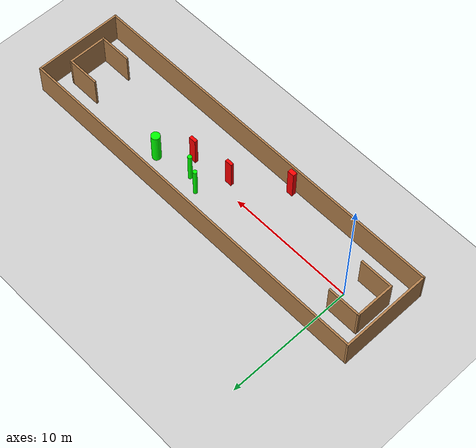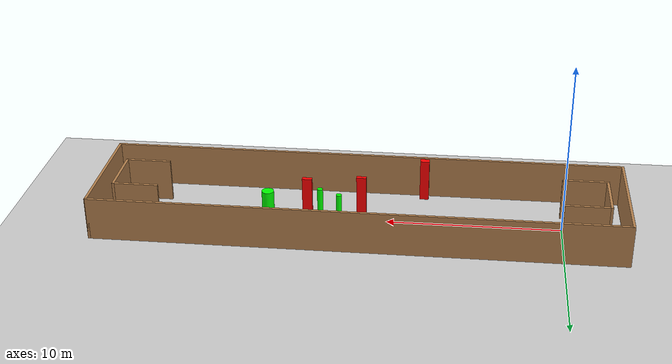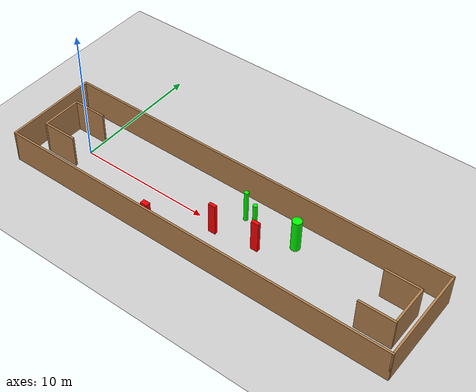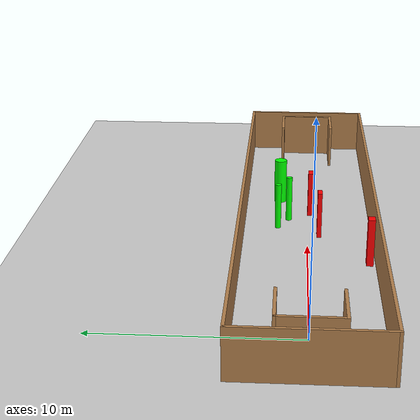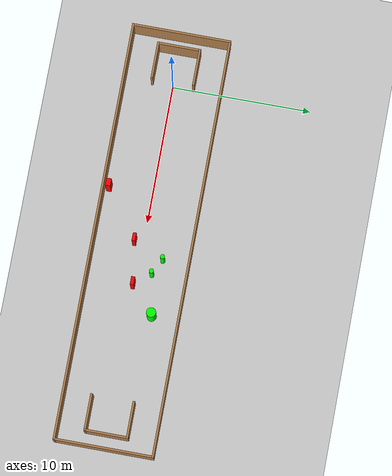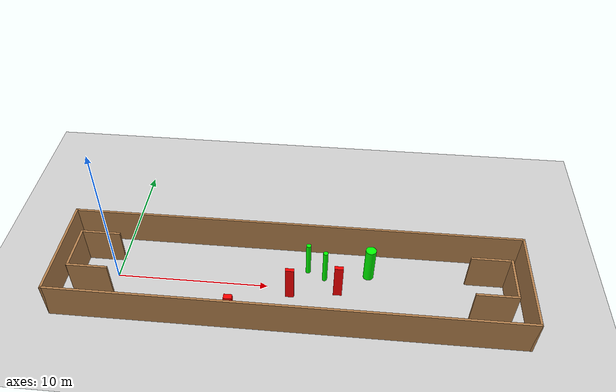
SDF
<sdf version="1.7">
 <world name="default">
  <light name="sun" type="directional">
   <pose>0 0 10 0 -0 0</pose>
   <diffuse>0.8 0.8 0.8 1</diffuse>
   <specular>0.2 0.2 0.2 1</specular>
   <attenuation>
    <range>1000</range>
    <constant>0.9</constant>
    <linear>0.01</linear>
    <quadratic>0.001</quadratic>
   </attenuation>
   <direction>-0.5 0.1 -0.9</direction>
   <spot><inner_angle>0</inner_angle><outer_angle>0</outer_angle><falloff>0</falloff></spot>
  </light>
  <model name="ground_plane">
   <static>1</static>
   <link name="link">
    <collision name="collision">
     <geometry><plane><normal>0 0 1</normal><size>100 100</size></plane></geometry>
     <surface>
      <contact><collide_bitmask>65535</collide_bitmask></contact>
      <friction><ode><mu>100</mu><mu2>50</mu2></ode></friction>
     </surface>
    </collision>
    <visual name="visual">
     <cast_shadows>0</cast_shadows>
     <geometry><plane><normal>0 0 1</normal><size>100 100</size></plane></geometry>
     <material>
      <script><uri>file://media/materials/scripts/gazebo.material</uri><name>Gazebo/Grey</name></script>
     </material>
    </visual>
   </link>
  </model>
  <gravity>0 0 -9.8</gravity>
  <magnetic_field>6e-06 2.3e-05 -4.2e-05</magnetic_field>
  <atmosphere type="adiabatic"/>
  <physics type="ode">
   <max_step_size>0.001</max_step_size>
   <real_time_factor>1</real_time_factor>
   <real_time_update_rate>1000</real_time_update_rate>
  </physics>
  <scene><ambient>0.4 0.4 0.4 1</ambient><background>0.7 0.7 0.7 1</background><shadows>1</shadows></scene>
  <spherical_coordinates>
   <surface_model>EARTH_WGS84</surface_model>
   <latitude_deg>0</latitude_deg>
   <longitude_deg>0</longitude_deg>
   <elevation>0</elevation>
   <heading_deg>0</heading_deg>
  </spherical_coordinates>
  <model name="my_base_walls">
   <link name="Wall_0">
    <collision name="Wall_0_Collision">
     <geometry><box><size>7.15 0.15 2.5</size></box></geometry>
     <pose>0 0 1.25 0 -0 0</pose>
    </collision>
    <visual name="Wall_0_Visual">
     <pose>0 0 1.25 0 -0 0</pose>
     <geometry><box><size>7.15 0.15 2.5</size></box></geometry>
     <material>
      <script><uri>file://media/materials/scripts/gazebo.material</uri><name>Gazebo/Wood</name></script>
      <ambient>1 1 1 1</ambient>
     </material>
     <meta><layer>0</layer></meta>
    </visual>
    <pose>-15 0 0 0 -0 1.5708</pose>
   </link>
   <link name="Wall_10">
    <collision name="Wall_10_Collision">
     <geometry><box><size>2.65 0.15 2.5</size></box></geometry>
     <pose>0 0 1.25 0 -0 0</pose>
    </collision>
    <visual name="Wall_10_Visual">
     <pose>0 0 1.25 0 -0 0</pose>
     <geometry><box><size>2.65 0.15 2.5</size></box></geometry>
     <material>
      <script><uri>file://media/materials/scripts/gazebo.material</uri><name>Gazebo/Wood</name></script>
      <ambient>1 1 1 1</ambient>
     </material>
     <meta><layer>0</layer></meta>
    </visual>
    <pose>-12.75 -1.5 0 0 -0 0</pose>
   </link>
   <link name="Wall_12">
    <collision name="Wall_12_Collision">
     <geometry><box><size>2.65 0.15 2.5</size></box></geometry>
     <pose>0 0 1.25 0 -0 0</pose>
    </collision>
    <visual name="Wall_12_Visual">
     <pose>0 0 1.25 0 -0 0</pose>
     <geometry><box><size>2.65 0.15 2.5</size></box></geometry>
     <material>
      <script><uri>file://media/materials/scripts/gazebo.material</uri><name>Gazebo/Wood</name></script>
      <ambient>1 1 1 1</ambient>
     </material>
     <meta><layer>0</layer></meta>
    </visual>
    <pose>-12.75 1.5 0 0 -0 0</pose>
   </link>
   <link name="Wall_14">
    <collision name="Wall_14_Collision">
     <geometry><box><size>3.15 0.15 2.5</size></box></geometry>
     <pose>0 0 1.25 0 -0 0</pose>
    </collision>
    <visual name="Wall_14_Visual">
     <pose>0 0 1.25 0 -0 0</pose>
     <geometry><box><size>3.15 0.15 2.5</size></box></geometry>
     <material>
      <script><uri>file://media/materials/scripts/gazebo.material</uri><name>Gazebo/Wood</name></script>
      <ambient>1 1 1 1</ambient>
     </material>
     <meta><layer>0</layer></meta>
    </visual>
    <pose>14 0 0 0 -0 -1.5708</pose>
   </link>
   <link name="Wall_15">
    <collision name="Wall_15_Collision">
     <geometry><box><size>2.65 0.15 2.5</size></box></geometry>
     <pose>0 0 1.25 0 -0 0</pose>
    </collision>
    <visual name="Wall_15_Visual">
     <pose>0 0 1.25 0 -0 0</pose>
     <geometry><box><size>2.65 0.15 2.5</size></box></geometry>
     <material>
      <script><uri>file://media/materials/scripts/gazebo.material</uri><name>Gazebo/Wood</name></script>
      <ambient>1 1 1 1</ambient>
     </material>
     <meta><layer>0</layer></meta>
    </visual>
    <pose>12.75 -1.5 0 0 -0 3.14159</pose>
   </link>
   <link name="Wall_17">
    <collision name="Wall_17_Collision">
     <geometry><box><size>2.65 0.15 2.5</size></box></geometry>
     <pose>0 0 1.25 0 -0 0</pose>
    </collision>
    <visual name="Wall_17_Visual">
     <pose>0 0 1.25 0 -0 0</pose>
     <geometry><box><size>2.65 0.15 2.5</size></box></geometry>
     <material>
      <script><uri>file://media/materials/scripts/gazebo.material</uri><name>Gazebo/Wood</name></script>
      <ambient>1 1 1 1</ambient>
     </material>
     <meta><layer>0</layer></meta>
    </visual>
    <pose>12.75 1.5 0 0 -0 3.14159</pose>
   </link>
   <link name="Wall_2">
    <collision name="Wall_2_Collision">
     <geometry><box><size>30.15 0.15 2.5</size></box></geometry>
     <pose>0 0 1.25 0 -0 0</pose>
    </collision>
    <visual name="Wall_2_Visual">
     <pose>0 0 1.25 0 -0 0</pose>
     <geometry><box><size>30.15 0.15 2.5</size></box></geometry>
     <material>
      <script><uri>file://media/materials/scripts/gazebo.material</uri><name>Gazebo/Wood</name></script>
      <ambient>1 1 1 1</ambient>
     </material>
     <meta><layer>0</layer></meta>
    </visual>
    <pose>-0 -3.5 0 0 -0 0</pose>
   </link>
   <link name="Wall_4">
    <collision name="Wall_4_Collision">
     <geometry><box><size>30.15 0.15 2.5</size></box></geometry>
     <pose>0 0 1.25 0 -0 0</pose>
    </collision>
    <visual name="Wall_4_Visual">
     <pose>0 0 1.25 0 -0 0</pose>
     <geometry><box><size>30.15 0.15 2.5</size></box></geometry>
     <material>
      <script><uri>file://media/materials/scripts/gazebo.material</uri><name>Gazebo/Wood</name></script>
      <ambient>1 1 1 1</ambient>
     </material>
     <meta><layer>0</layer></meta>
    </visual>
    <pose>-0 3.5 0 0 -0 0</pose>
   </link>
   <link name="Wall_6">
    <collision name="Wall_6_Collision">
     <geometry><box><size>7.15 0.15 2.5</size></box></geometry>
     <pose>0 0 1.25 0 -0 0</pose>
    </collision>
    <visual name="Wall_6_Visual">
     <pose>0 0 1.25 0 -0 0</pose>
     <geometry><box><size>7.15 0.15 2.5</size></box></geometry>
     <material>
      <script><uri>file://media/materials/scripts/gazebo.material</uri><name>Gazebo/Wood</name></script>
      <ambient>1 1 1 1</ambient>
     </material>
     <meta><layer>0</layer></meta>
    </visual>
    <pose>15 0 0 0 -0 -1.5708</pose>
   </link>
   <link name="Wall_9">
    <collision name="Wall_9_Collision">
     <geometry><box><size>3.15 0.15 2.5</size></box></geometry>
     <pose>0 0 1.25 0 -0 0</pose>
    </collision>
    <visual name="Wall_9_Visual">
     <pose>0 0 1.25 0 -0 0</pose>
     <geometry><box><size>3.15 0.15 2.5</size></box></geometry>
     <material>
      <script><uri>file://media/materials/scripts/gazebo.material</uri><name>Gazebo/Wood</name></script>
      <ambient>1 1 1 1</ambient>
     </material>
     <meta><layer>0</layer></meta>
    </visual>
    <pose>-14 0 0 0 -0 -1.5708</pose>
   </link>
   <static>1</static>
   <pose>11.5 0 0 0 -0 0</pose>
  </model>
  <model name="cylinder1">
   <static>1</static>
   <link name="link">
    <inertial>
     <mass>1</mass>
     <inertia><ixx>0.5</ixx><ixy>0</ixy><ixz>0</ixz><iyy>0.5</iyy><iyz>0</iyz><izz>1</izz></inertia>
    </inertial>
    <collision name="collision">
     <geometry><cylinder><radius>0.1599380575936499</radius><length>2.5</length></cylinder></geometry>
    </collision>
    <visual name="visual">
     <geometry><cylinder><radius>0.1599380575936499</radius><length>2.5</length></cylinder></geometry>
     <material>
      <ambient>0 1 0 1</ambient>
      <diffuse>0 1 0 1</diffuse>
      <specular>0.1 0.1 0.1 1</specular>
      <emissive>0 0 0 0</emissive>
     </material>
    </visual>
   </link>
   <pose>12.562527215862444 1.5969808044861784 1.25 0 0 0</pose>
  </model>
  <model name="cylinder2">
   <static>1</static>
   <link name="link">
    <inertial>
     <mass>1</mass>
     <inertia><ixx>0.5</ixx><ixy>0</ixy><ixz>0</ixz><iyy>0.5</iyy><iyz>0</iyz><izz>1</izz></inertia>
    </inertial>
    <collision name="collision">
     <geometry><cylinder><radius>0.1608711070735087</radius><length>2.5</length></cylinder></geometry>
    </collision>
    <visual name="visual">
     <geometry><cylinder><radius>0.1608711070735087</radius><length>2.5</length></cylinder></geometry>
     <material>
      <ambient>0 1 0 1</ambient>
      <diffuse>0 1 0 1</diffuse>
      <specular>0.1 0.1 0.1 1</specular>
      <emissive>0 0 0 0</emissive>
     </material>
    </visual>
   </link>
   <pose>13.69896842558607 1.0153792767211343 1.25 0 0 0</pose>
  </model>
  <model name="cylinder3">
   <static>1</static>
   <link name="link">
    <inertial>
     <mass>1</mass>
     <inertia><ixx>0.5</ixx><ixy>0</ixy><ixz>0</ixz><iyy>0.5</iyy><iyz>0</iyz><izz>1</izz></inertia>
    </inertial>
    <collision name="collision">
     <geometry><cylinder><radius>0.3436374593250336</radius><length>2.5</length></cylinder></geometry>
    </collision>
    <visual name="visual">
     <geometry><cylinder><radius>0.3436374593250336</radius><length>2.5</length></cylinder></geometry>
     <material>
      <ambient>0 1 0 1</ambient>
      <diffuse>0 1 0 1</diffuse>
      <specular>0.1 0.1 0.1 1</specular>
      <emissive>0 0 0 0</emissive>
     </material>
    </visual>
   </link>
   <pose>16.587611527262105 1.5348780404544797 1.25 0 0 0</pose>
  </model>
  <model name="box1">
   <static>1</static>
   <link name="link">
    <inertial>
     <mass>1</mass>
     <inertia><ixx>0.083</ixx><ixy>0</ixy><ixz>0</ixz><iyy>0.083</iyy><iyz>0</iyz><izz>0.083</izz></inertia>
    </inertial>
    <collision name="collision">
     <geometry><box><size>0.5265573301559845 0.3489081658126539 2.5</size></box></geometry>
    </collision>
    <visual name="visual">
     <geometry><box><size>0.5265573301559845 0.3489081658126539 2.5</size></box></geometry>
     <material>
      <ambient>1 0 0 1</ambient>
      <diffuse>1 0 0 1</diffuse>
      <specular>0.1 0.1 0.1 1</specular>
      <emissive>0 0 0 0</emissive>
     </material>
    </visual>
    <sensor name="my_contact" type="contact">
     <contact><collision>box_collision</collision><topic>__default_topic__</topic></contact>
    </sensor>
   </link>
   <pose>8.012146067879964 -3.12552071872819 1.25 0 0 0</pose>
  </model>
  <model name="box2">
   <static>1</static>
   <link name="link">
    <inertial>
     <mass>1</mass>
     <inertia><ixx>0.083</ixx><ixy>0</ixy><ixz>0</ixz><iyy>0.083</iyy><iyz>0</iyz><izz>0.083</izz></inertia>
    </inertial>
    <collision name="collision">
     <geometry><box><size>0.5617739302757334 0.2369503998959372 2.5</size></box></geometry>
    </collision>
    <visual name="visual">
     <geometry><box><size>0.5617739302757334 0.2369503998959372 2.5</size></box></geometry>
     <material>
      <ambient>1 0 0 1</ambient>
      <diffuse>1 0 0 1</diffuse>
      <specular>0.1 0.1 0.1 1</specular>
      <emissive>0 0 0 0</emissive>
     </material>
    </visual>
    <sensor name="my_contact" type="contact">
     <contact><collision>box_collision</collision><topic>__default_topic__</topic></contact>
    </sensor>
   </link>
   <pose>11.523428953361368 -0.6274524472249468 1.25 0 0 0</pose>
  </model>
  <model name="box3">
   <static>1</static>
   <link name="link">
    <inertial>
     <mass>1</mass>
     <inertia><ixx>0.083</ixx><ixy>0</ixy><ixz>0</ixz><iyy>0.083</iyy><iyz>0</iyz><izz>0.083</izz></inertia>
    </inertial>
    <collision name="collision">
     <geometry><box><size>0.5650428251556432 0.25723607093757916 2.5</size></box></geometry>
    </collision>
    <visual name="visual">
     <geometry><box><size>0.5650428251556432 0.25723607093757916 2.5</size></box></geometry>
     <material>
      <ambient>1 0 0 1</ambient>
      <diffuse>1 0 0 1</diffuse>
      <specular>0.1 0.1 0.1 1</specular>
      <emissive>0 0 0 0</emissive>
     </material>
    </visual>
    <sensor name="my_contact" type="contact">
     <contact><collision>box_collision</collision><topic>__default_topic__</topic></contact>
    </sensor>
   </link>
   <pose>14.60546361425779 -0.16487510467112454 1.25 0 0 0</pose>
  </model>
 </world>
</sdf>
